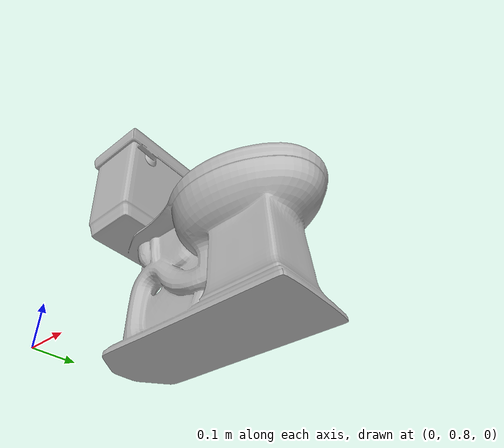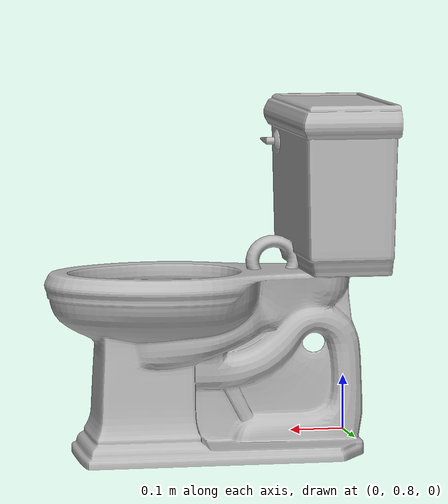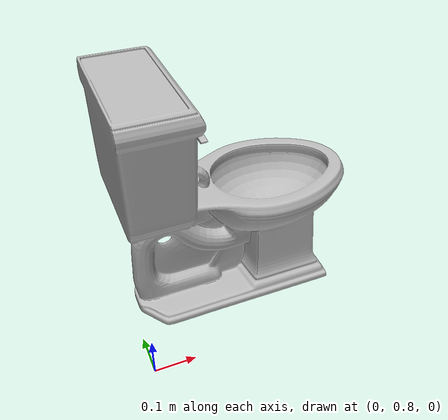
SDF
<?xml version="1.0" ?>
<sdf version="1.6">
  <model name="toilet_ornament">
    <pose>0 0 0 0 0 0</pose>
    <static>true</static> <!-- El objeto no se moverá -->
    <link name="link">
      <collision name="collision">
        <geometry>
          <mesh>
            <uri>model://toilet_ornament/meshes/Toilet_ornament.stl</uri>
            <scale>0.02 0.02 0.02</scale>
          </mesh>
        </geometry>
      </collision>
      <visual name="visual">
        <pose>0 0 0 0 0 1.57</pose>
        <geometry>
          <mesh>
            <uri>model://toilet_ornament/meshes/Toilet_ornament.stl</uri>
            <scale>0.02 0.02 0.02</scale>
          </mesh>
        </geometry>
      </visual>
    </link>
  </model>
</sdf>
